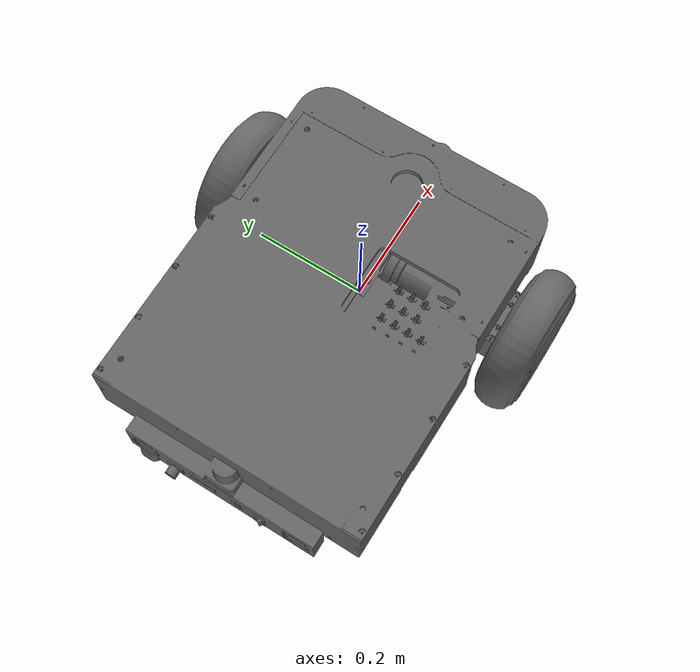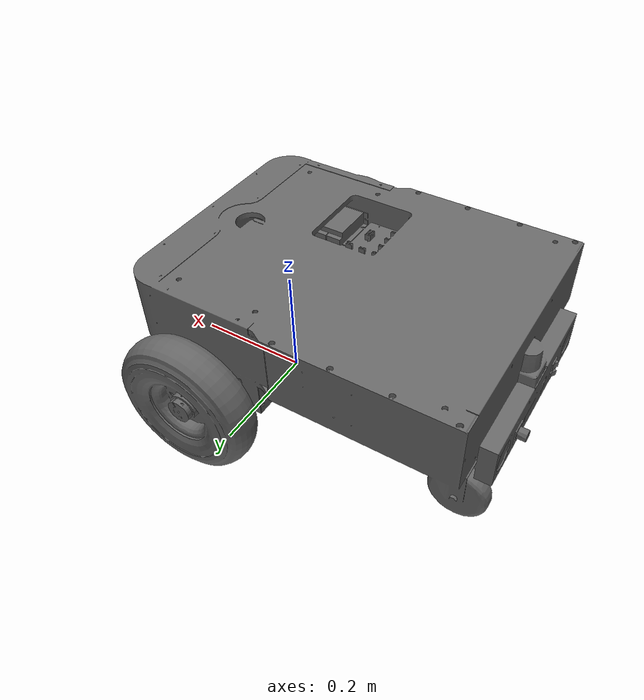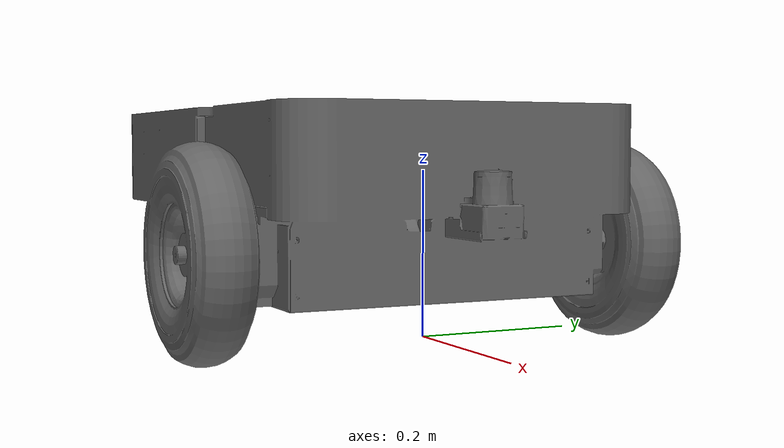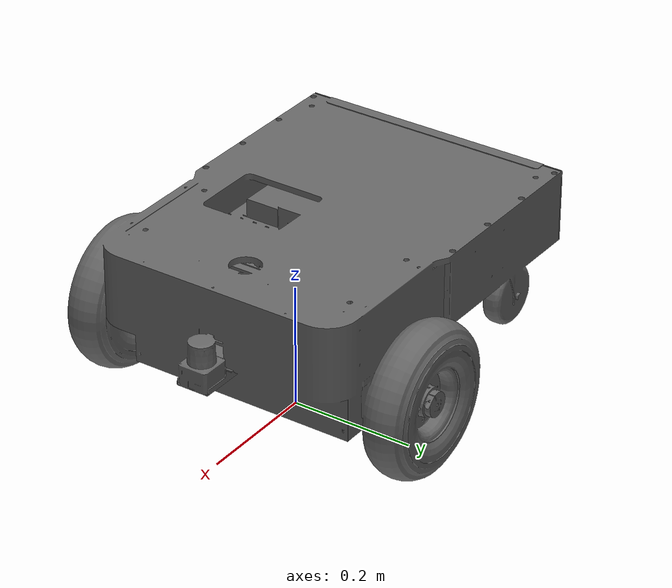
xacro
<?xml version="1.0"?>
<robot name="isr_m4" xmlns:xacro="http://ros.org/wiki/xacro">
  <!-- Base Link -->
  <link name="base_link">
    <visual>
      <origin xyz="0 0 0.457" rpy="-1.57 0 -1.57" />
      <geometry>
        <mesh filename="file://$(find isr_m4_description)/meshes/isr_m3.stl" scale="0.001 0.001 0.001" />
      </geometry>
      <material name="light_black">
        <!-- Define the RGBA color for light black; RGBA values range from 0 to 1 -->
        <color rgba="0.4 0.4 0.4 1.0" /> <!-- light black color -->
      </material>
    </visual>
    <!-- Add inertial and collision as needed -->
  </link>

</robot>
